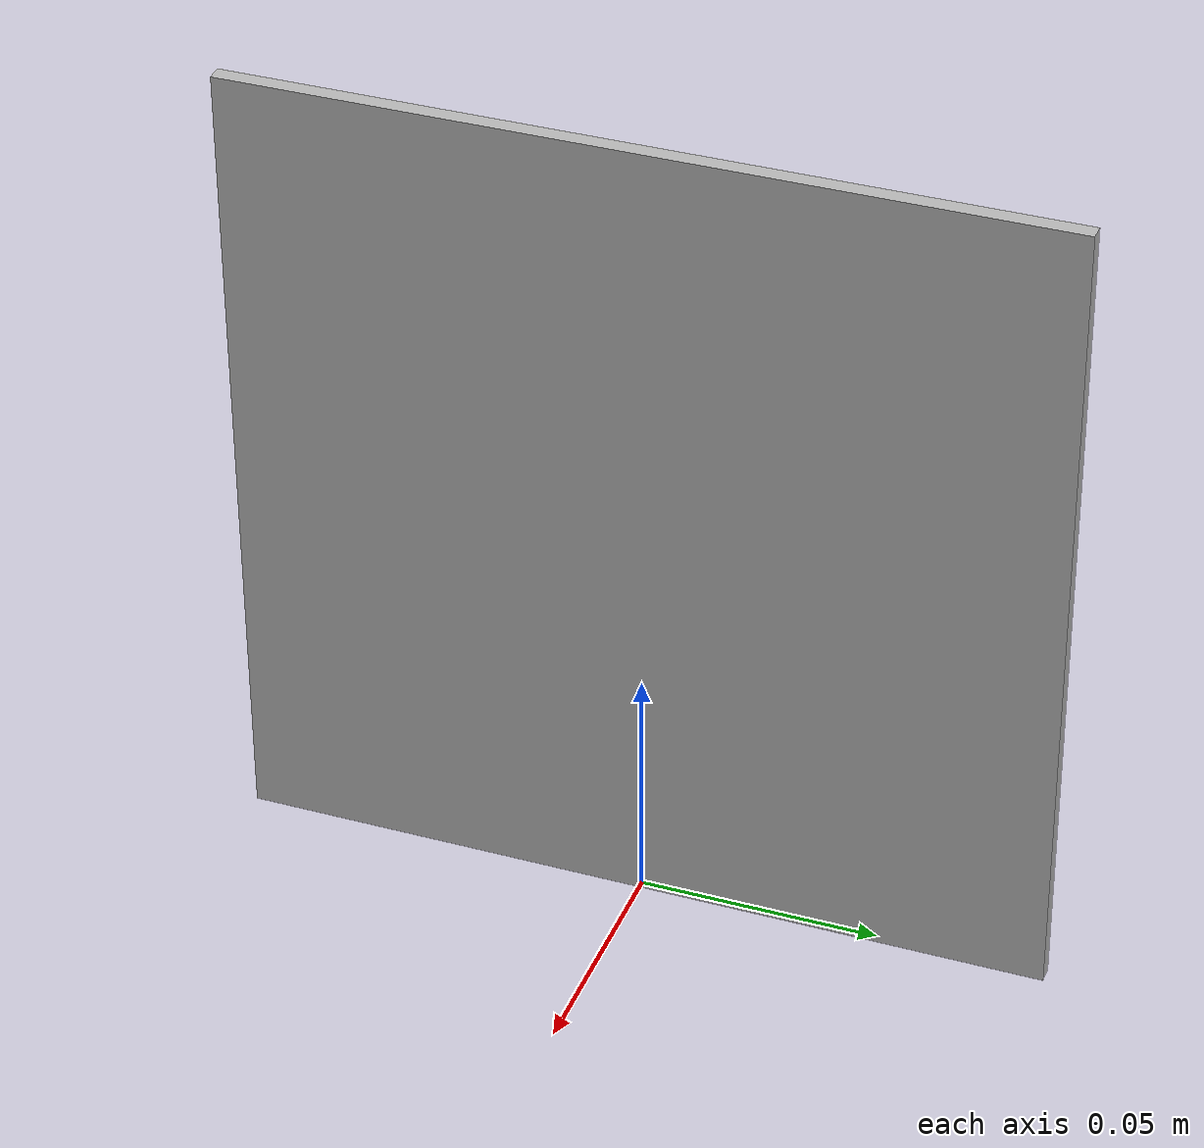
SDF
<?xml version="1.0" ?><sdf version="1.5">
  <model name="MarkerData_10">
    <static>true</static>
    <link name="link">
      <visual name="visual">
        <geometry>
          <mesh>
            <uri>model://markerdata_10/meshes/MarkerData_10.dae</uri>
          <scale>0.34 0.34 0.34</scale></mesh>
        </geometry>
      </visual>
    </link>
  </model>
</sdf>
